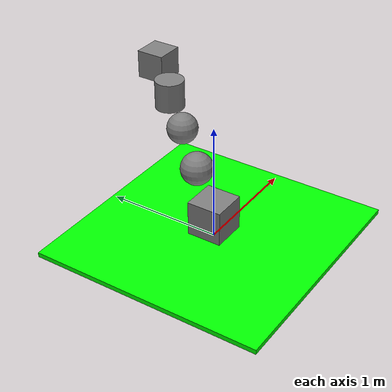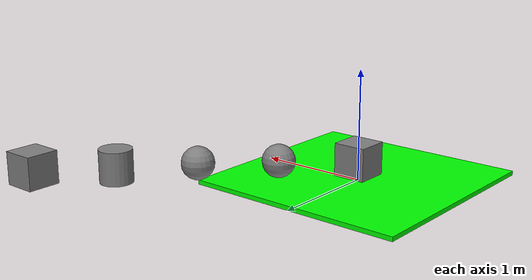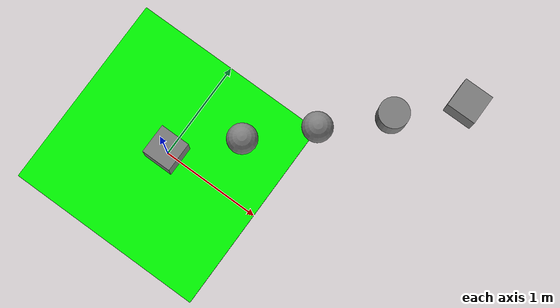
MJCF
<mujoco>
    <compiler angle="radian" />
    <worldbody>
        <body name="box" pos="0 0 0.2">
            <geom size="0.15 0.15 0.15" type="box" mass="1"/>
            <joint axis="1 0 0" name="box:x" type="slide"/>
            <joint axis="0 1 0" name="box:y" type="slide"/>
        </body>
        <!-- body moves together -->
        <body name="shapes" pos="0.5 0.5 0.2" >
            <geom type="ellipsoid" pos="0 0 0" mass="100" size="0.15 0.15 0.15"/>
            <geom type="sphere" pos="0.5 0.5 0" mass="100" size="0.15 0.15 0.15"/>
            <geom type="cylinder" pos="1 1 0" mass="0.1" size="0.15 0.15 0.15"/>
            <geom type="box" pos="1.5 1.5 0" mass="0.1" size="0.15 0.15 0.15"/>
            <!-- joints allow the body to move. Without them the body won't move -->
            <joint axis="1 0 0" name="shapes:x" type="slide"/>
            <joint axis="0 1 0" name="shapes:y" type="slide"/>
        </body>
        <body name="floor" pos="0 0 0.025">
            <geom size="1.0 1.0 0.02" rgba="0 1 0 1" type="box"/>
        </body>
        <camera name="camera_left" pos="-0.1 -1.2 1" fovy="90" axisangle="1 0 0 0.9"/>
        <camera name="camera_right" pos="0.1 -1.2 1" fovy="90" axisangle="1 0 0 0.9"/>
    </worldbody>
    <actuator>
        <general name="a" joint="box:x" ctrlrange="-10 10" />
        <general name="b" joint="box:y" ctrlrange="-10 10" />
    </actuator>
</mujoco>
